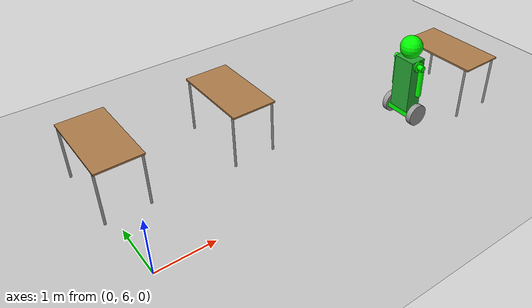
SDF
<sdf version="1.6">
 <world name="default">
  <model name="ground_plane">
   <static>1</static>
   <link name="link">
    <collision name="collision">
     <geometry><plane><normal>0 0 1</normal><size>100 100</size></plane></geometry>
     <surface>
      <contact><collide_bitmask>65535</collide_bitmask></contact>
      <friction><ode><mu>100</mu><mu2>50</mu2></ode></friction>
     </surface>
    </collision>
    <visual name="visual">
     <cast_shadows>0</cast_shadows>
     <geometry><plane><normal>0 0 1</normal><size>100 100</size></plane></geometry>
     <material>
      <script><uri>file://media/materials/scripts/gazebo.material</uri><name>Gazebo/Grey</name></script>
     </material>
    </visual>
   </link>
  </model>
  <model name="table">
   <static>1</static>
   <link name="link">
    <collision name="surface">
     <pose>0 0 1 0 -0 0</pose>
     <geometry><box><size>1.5 0.8 0.03</size></box></geometry>
     <surface><friction><ode><mu>0.6</mu><mu2>0.6</mu2></ode></friction></surface>
    </collision>
    <visual name="visual1">
     <pose>0 0 1 0 -0 0</pose>
     <geometry><box><size>1.5 0.8 0.03</size></box></geometry>
     <material>
      <script><uri>file://media/materials/scripts/gazebo.material</uri><name>Gazebo/Wood</name></script>
     </material>
    </visual>
    <collision name="front_left_leg">
     <pose>0.68 0.38 0.5 0 -0 0</pose>
     <geometry><cylinder><radius>0.02</radius><length>1</length></cylinder></geometry>
    </collision>
    <visual name="front_left_leg">
     <pose>0.68 0.38 0.5 0 -0 0</pose>
     <geometry><cylinder><radius>0.02</radius><length>1</length></cylinder></geometry>
     <material>
      <script><uri>file://media/materials/scripts/gazebo.material</uri><name>Gazebo/Grey</name></script>
     </material>
    </visual>
    <collision name="front_right_leg">
     <pose>0.68 -0.38 0.5 0 -0 0</pose>
     <geometry><cylinder><radius>0.02</radius><length>1</length></cylinder></geometry>
    </collision>
    <visual name="front_right_leg">
     <pose>0.68 -0.38 0.5 0 -0 0</pose>
     <geometry><cylinder><radius>0.02</radius><length>1</length></cylinder></geometry>
     <material>
      <script><uri>file://media/materials/scripts/gazebo.material</uri><name>Gazebo/Grey</name></script>
     </material>
    </visual>
    <collision name="back_right_leg">
     <pose>-0.68 -0.38 0.5 0 -0 0</pose>
     <geometry><cylinder><radius>0.02</radius><length>1</length></cylinder></geometry>
    </collision>
    <visual name="back_right_leg">
     <pose>-0.68 -0.38 0.5 0 -0 0</pose>
     <geometry><cylinder><radius>0.02</radius><length>1</length></cylinder></geometry>
     <material>
      <script><uri>file://media/materials/scripts/gazebo.material</uri><name>Gazebo/Grey</name></script>
     </material>
    </visual>
    <collision name="back_left_leg">
     <pose>-0.68 0.38 0.5 0 -0 0</pose>
     <geometry><cylinder><radius>0.02</radius><length>1</length></cylinder></geometry>
    </collision>
    <visual name="back_left_leg">
     <pose>-0.68 0.38 0.5 0 -0 0</pose>
     <geometry><cylinder><radius>0.02</radius><length>1</length></cylinder></geometry>
     <material>
      <script><uri>file://media/materials/scripts/gazebo.material</uri><name>Gazebo/Grey</name></script>
     </material>
    </visual>
   </link>
   <pose>0.217086 7.96182 0 0 -0 1.58249</pose>
  </model>
  <model name="table_clone">
   <static>1</static>
   <link name="link">
    <collision name="surface">
     <pose>0 0 1 0 -0 0</pose>
     <geometry><box><size>1.5 0.8 0.03</size></box></geometry>
     <surface><friction><ode><mu>0.6</mu><mu2>0.6</mu2></ode></friction></surface>
    </collision>
    <visual name="visual1">
     <pose>0 0 1 0 -0 0</pose>
     <geometry><box><size>1.5 0.8 0.03</size></box></geometry>
     <material>
      <script><uri>file://media/materials/scripts/gazebo.material</uri><name>Gazebo/Wood</name></script>
     </material>
    </visual>
    <collision name="front_left_leg">
     <pose>0.68 0.38 0.5 0 -0 0</pose>
     <geometry><cylinder><radius>0.02</radius><length>1</length></cylinder></geometry>
    </collision>
    <visual name="front_left_leg">
     <pose>0.68 0.38 0.5 0 -0 0</pose>
     <geometry><cylinder><radius>0.02</radius><length>1</length></cylinder></geometry>
     <material>
      <script><uri>file://media/materials/scripts/gazebo.material</uri><name>Gazebo/Grey</name></script>
     </material>
    </visual>
    <collision name="front_right_leg">
     <pose>0.68 -0.38 0.5 0 -0 0</pose>
     <geometry><cylinder><radius>0.02</radius><length>1</length></cylinder></geometry>
    </collision>
    <visual name="front_right_leg">
     <pose>0.68 -0.38 0.5 0 -0 0</pose>
     <geometry><cylinder><radius>0.02</radius><length>1</length></cylinder></geometry>
     <material>
      <script><uri>file://media/materials/scripts/gazebo.material</uri><name>Gazebo/Grey</name></script>
     </material>
    </visual>
    <collision name="back_right_leg">
     <pose>-0.68 -0.38 0.5 0 -0 0</pose>
     <geometry><cylinder><radius>0.02</radius><length>1</length></cylinder></geometry>
    </collision>
    <visual name="back_right_leg">
     <pose>-0.68 -0.38 0.5 0 -0 0</pose>
     <geometry><cylinder><radius>0.02</radius><length>1</length></cylinder></geometry>
     <material>
      <script><uri>file://media/materials/scripts/gazebo.material</uri><name>Gazebo/Grey</name></script>
     </material>
    </visual>
    <collision name="back_left_leg">
     <pose>-0.68 0.38 0.5 0 -0 0</pose>
     <geometry><cylinder><radius>0.02</radius><length>1</length></cylinder></geometry>
    </collision>
    <visual name="back_left_leg">
     <pose>-0.68 0.38 0.5 0 -0 0</pose>
     <geometry><cylinder><radius>0.02</radius><length>1</length></cylinder></geometry>
     <material>
      <script><uri>file://media/materials/scripts/gazebo.material</uri><name>Gazebo/Grey</name></script>
     </material>
    </visual>
   </link>
   <pose>2.49398 7.93841 0 0 -0 1.58249</pose>
  </model>
  <model name="table_clone_clone">
   <static>1</static>
   <link name="link">
    <collision name="surface">
     <pose>0 0 1 0 -0 0</pose>
     <geometry><box><size>1.5 0.8 0.03</size></box></geometry>
     <surface><friction><ode><mu>0.6</mu><mu2>0.6</mu2></ode></friction></surface>
    </collision>
    <visual name="visual1">
     <pose>0 0 1 0 -0 0</pose>
     <geometry><box><size>1.5 0.8 0.03</size></box></geometry>
     <material>
      <script><uri>file://media/materials/scripts/gazebo.material</uri><name>Gazebo/Wood</name></script>
     </material>
    </visual>
    <collision name="front_left_leg">
     <pose>0.68 0.38 0.5 0 -0 0</pose>
     <geometry><cylinder><radius>0.02</radius><length>1</length></cylinder></geometry>
    </collision>
    <visual name="front_left_leg">
     <pose>0.68 0.38 0.5 0 -0 0</pose>
     <geometry><cylinder><radius>0.02</radius><length>1</length></cylinder></geometry>
     <material>
      <script><uri>file://media/materials/scripts/gazebo.material</uri><name>Gazebo/Grey</name></script>
     </material>
    </visual>
    <collision name="front_right_leg">
     <pose>0.68 -0.38 0.5 0 -0 0</pose>
     <geometry><cylinder><radius>0.02</radius><length>1</length></cylinder></geometry>
    </collision>
    <visual name="front_right_leg">
     <pose>0.68 -0.38 0.5 0 -0 0</pose>
     <geometry><cylinder><radius>0.02</radius><length>1</length></cylinder></geometry>
     <material>
      <script><uri>file://media/materials/scripts/gazebo.material</uri><name>Gazebo/Grey</name></script>
     </material>
    </visual>
    <collision name="back_right_leg">
     <pose>-0.68 -0.38 0.5 0 -0 0</pose>
     <geometry><cylinder><radius>0.02</radius><length>1</length></cylinder></geometry>
    </collision>
    <visual name="back_right_leg">
     <pose>-0.68 -0.38 0.5 0 -0 0</pose>
     <geometry><cylinder><radius>0.02</radius><length>1</length></cylinder></geometry>
     <material>
      <script><uri>file://media/materials/scripts/gazebo.material</uri><name>Gazebo/Grey</name></script>
     </material>
    </visual>
    <collision name="back_left_leg">
     <pose>-0.68 0.38 0.5 0 -0 0</pose>
     <geometry><cylinder><radius>0.02</radius><length>1</length></cylinder></geometry>
    </collision>
    <visual name="back_left_leg">
     <pose>-0.68 0.38 0.5 0 -0 0</pose>
     <geometry><cylinder><radius>0.02</radius><length>1</length></cylinder></geometry>
     <material>
      <script><uri>file://media/materials/scripts/gazebo.material</uri><name>Gazebo/Grey</name></script>
     </material>
    </visual>
   </link>
   <pose>6.55979 6.6988 0 0 -0 1.58249</pose>
  </model>
  <model name="humanoid_robot_clone_1">
   <link name="link_0">
    <pose>0 0 -0.1375 0 -0 0</pose>
    <inertial>
     <mass>10</mass>
     <inertia>
      <ixx>0.216667</ixx>
      <ixy>0</ixy>
      <ixz>0</ixz>
      <iyy>0.0833333</iyy>
      <iyz>0</iyz>
      <izz>0.283333</izz>
     </inertia>
    </inertial>
    <visual name="visual">
     <geometry><box><size>0.3 0.5 0.1</size></box></geometry>
     <material>
      <lighting>1</lighting>
      <script><uri>file://media/materials/scripts/gazebo.material</uri><name>Gazebo/Grey</name></script>
      <shader type="pixel"><normal_map>__default__</normal_map></shader>
      <ambient>0 1 0 1</ambient>
      <diffuse>0.7 0.7 0.7 1</diffuse>
      <specular>0.01 0.01 0.01 1</specular>
      <emissive>0 0 0 1</emissive>
     </material>
    </visual>
    <collision name="collision">
     <geometry><box><size>0.3 0.5 0.1</size></box></geometry>
     <surface>
      <friction>
       <ode><mu>1</mu><mu2>1</mu2><fdir1>0 0 0</fdir1><slip1>0</slip1><slip2>0</slip2></ode>
       <torsional>
        <coefficient>1</coefficient>
        <patch_radius>0</patch_radius>
        <surface_radius>0</surface_radius>
        <use_patch_radius>1</use_patch_radius>
        <ode><slip>0</slip></ode>
       </torsional>
      </friction>
      <bounce><restitution_coefficient>0</restitution_coefficient><threshold>1e+06</threshold></bounce>
      <contact>
       <collide_without_contact>0</collide_without_contact>
       <collide_without_contact_bitmask>1</collide_without_contact_bitmask>
       <collide_bitmask>1</collide_bitmask>
       <ode>
        <soft_cfm>0</soft_cfm>
        <soft_erp>0.2</soft_erp>
        <kp>1e+13</kp>
        <kd>1</kd>
        <max_vel>0.01</max_vel>
        <min_depth>0</min_depth>
       </ode>
       <bullet>
        <split_impulse>1</split_impulse>
        <split_impulse_penetration_threshold>-0.01</split_impulse_penetration_threshold>
        <soft_cfm>0</soft_cfm>
        <soft_erp>0.2</soft_erp>
        <kp>1e+13</kp>
        <kd>1</kd>
       </bullet>
      </contact>
     </surface>
    </collision>
   </link>
   <link name="link_0_0">
    <pose>0 0 1.1125 0 -0 0</pose>
    <inertial>
     <mass>0.25</mass>
     <inertia><ixx>0.1</ixx><ixy>0</ixy><ixz>0</ixz><iyy>0.1</iyy><iyz>0</iyz><izz>0.1</izz></inertia>
    </inertial>
    <visual name="visual">
     <geometry><sphere><radius>0.2</radius></sphere></geometry>
     <material>
      <lighting>1</lighting>
      <script><uri>file://media/materials/scripts/gazebo.material</uri><name>Gazebo/Grey</name></script>
      <shader type="pixel"><normal_map>__default__</normal_map></shader>
      <ambient>0 1 0 1</ambient>
      <diffuse>0.7 0.7 0.7 1</diffuse>
      <specular>0.01 0.01 0.01 1</specular>
      <emissive>0 0 0 1</emissive>
     </material>
    </visual>
    <collision name="collision">
     <geometry><sphere><radius>0.2</radius></sphere></geometry>
     <surface>
      <friction>
       <ode><mu>1</mu><mu2>1</mu2><fdir1>0 0 0</fdir1><slip1>0</slip1><slip2>0</slip2></ode>
       <torsional>
        <coefficient>1</coefficient>
        <patch_radius>0</patch_radius>
        <surface_radius>0</surface_radius>
        <use_patch_radius>1</use_patch_radius>
        <ode><slip>0</slip></ode>
       </torsional>
      </friction>
      <bounce><restitution_coefficient>0</restitution_coefficient><threshold>1e+06</threshold></bounce>
      <contact>
       <collide_without_contact>0</collide_without_contact>
       <collide_without_contact_bitmask>1</collide_without_contact_bitmask>
       <collide_bitmask>1</collide_bitmask>
       <ode>
        <soft_cfm>0</soft_cfm>
        <soft_erp>0.2</soft_erp>
        <kp>1e+13</kp>
        <kd>1</kd>
        <max_vel>0.01</max_vel>
        <min_depth>0</min_depth>
       </ode>
       <bullet>
        <split_impulse>1</split_impulse>
        <split_impulse_penetration_threshold>-0.01</split_impulse_penetration_threshold>
        <soft_cfm>0</soft_cfm>
        <soft_erp>0.2</soft_erp>
        <kp>1e+13</kp>
        <kd>1</kd>
       </bullet>
      </contact>
     </surface>
    </collision>
   </link>
   <link name="link_1">
    <pose>0 -0.300019 -0.137182 1.5707 -0 0</pose>
    <inertial>
     <mass>1</mass>
     <inertia><ixx>0.145833</ixx><ixy>0</ixy><ixz>0</ixz><iyy>0.145833</iyy><iyz>0</iyz><izz>0.125</izz></inertia>
    </inertial>
    <visual name="visual">
     <geometry><cylinder><radius>0.2</radius><length>0.1</length></cylinder></geometry>
     <material>
      <lighting>1</lighting>
      <script><uri>file://media/materials/scripts/gazebo.material</uri><name>Gazebo/Grey</name></script>
      <shader type="pixel"><normal_map>__default__</normal_map></shader>
      <ambient>1 1 1 1</ambient>
      <diffuse>0.7 0.7 0.7 1</diffuse>
      <specular>0.01 0.01 0.01 1</specular>
      <emissive>0 0 0 1</emissive>
     </material>
    </visual>
    <collision name="collision">
     <geometry><cylinder><radius>0.2</radius><length>0.1</length></cylinder></geometry>
     <surface>
      <friction>
       <ode><mu>1</mu><mu2>1</mu2><fdir1>0 0 0</fdir1><slip1>0</slip1><slip2>0</slip2></ode>
       <torsional>
        <coefficient>1</coefficient>
        <patch_radius>0</patch_radius>
        <surface_radius>0</surface_radius>
        <use_patch_radius>1</use_patch_radius>
        <ode><slip>0</slip></ode>
       </torsional>
      </friction>
      <bounce><restitution_coefficient>0</restitution_coefficient><threshold>1e+06</threshold></bounce>
      <contact>
       <collide_without_contact>0</collide_without_contact>
       <collide_without_contact_bitmask>1</collide_without_contact_bitmask>
       <collide_bitmask>1</collide_bitmask>
       <ode>
        <soft_cfm>0</soft_cfm>
        <soft_erp>0.2</soft_erp>
        <kp>1e+13</kp>
        <kd>1</kd>
        <max_vel>0.01</max_vel>
        <min_depth>0</min_depth>
       </ode>
       <bullet>
        <split_impulse>1</split_impulse>
        <split_impulse_penetration_threshold>-0.01</split_impulse_penetration_threshold>
        <soft_cfm>0</soft_cfm>
        <soft_erp>0.2</soft_erp>
        <kp>1e+13</kp>
        <kd>1</kd>
       </bullet>
      </contact>
     </surface>
    </collision>
   </link>
   <link name="link_1_0">
    <pose>0 -0.275033 0.812507 1.5707 -0 0</pose>
    <inertial>
     <mass>0.1</mass>
     <inertia><ixx>0.145833</ixx><ixy>0</ixy><ixz>0</ixz><iyy>0.145833</iyy><iyz>0</iyz><izz>0.125</izz></inertia>
    </inertial>
    <visual name="visual">
     <geometry><cylinder><radius>0.05</radius><length>0.1</length></cylinder></geometry>
     <material>
      <lighting>1</lighting>
      <script><uri>file://media/materials/scripts/gazebo.material</uri><name>Gazebo/Grey</name></script>
      <shader type="pixel"><normal_map>__default__</normal_map></shader>
      <ambient>0 1 0 1</ambient>
      <diffuse>0.7 0.7 0.7 1</diffuse>
      <specular>0.01 0.01 0.01 1</specular>
      <emissive>0 0 0 1</emissive>
     </material>
    </visual>
    <collision name="collision">
     <geometry><cylinder><radius>0.05</radius><length>0.1</length></cylinder></geometry>
     <surface>
      <friction>
       <ode><mu>1</mu><mu2>1</mu2><fdir1>0 0 0</fdir1><slip1>0</slip1><slip2>0</slip2></ode>
       <torsional>
        <coefficient>1</coefficient>
        <patch_radius>0</patch_radius>
        <surface_radius>0</surface_radius>
        <use_patch_radius>1</use_patch_radius>
        <ode><slip>0</slip></ode>
       </torsional>
      </friction>
      <bounce><restitution_coefficient>0</restitution_coefficient><threshold>1e+06</threshold></bounce>
      <contact>
       <collide_without_contact>0</collide_without_contact>
       <collide_without_contact_bitmask>1</collide_without_contact_bitmask>
       <collide_bitmask>1</collide_bitmask>
       <ode>
        <soft_cfm>0</soft_cfm>
        <soft_erp>0.2</soft_erp>
        <kp>1e+13</kp>
        <kd>1</kd>
        <max_vel>0.01</max_vel>
        <min_depth>0</min_depth>
       </ode>
       <bullet>
        <split_impulse>1</split_impulse>
        <split_impulse_penetration_threshold>-0.01</split_impulse_penetration_threshold>
        <soft_cfm>0</soft_cfm>
        <soft_erp>0.2</soft_erp>
        <kp>1e+13</kp>
        <kd>1</kd>
       </bullet>
      </contact>
     </surface>
    </collision>
   </link>
   <link name="link_1_0_clone">
    <pose>0 0.275024 0.812479 1.5707 -0 0</pose>
    <inertial>
     <mass>0.1</mass>
     <inertia><ixx>0.145833</ixx><ixy>0</ixy><ixz>0</ixz><iyy>0.145833</iyy><iyz>0</iyz><izz>0.125</izz></inertia>
    </inertial>
    <visual name="visual_0">
     <geometry><cylinder><radius>0.05</radius><length>0.1</length></cylinder></geometry>
     <material>
      <lighting>1</lighting>
      <script><uri>file://media/materials/scripts/gazebo.material</uri><name>Gazebo/Grey</name></script>
      <shader type="pixel"><normal_map>__default__</normal_map></shader>
      <ambient>0 1 0 1</ambient>
      <diffuse>0.7 0.7 0.7 1</diffuse>
      <specular>0.01 0.01 0.01 1</specular>
      <emissive>0 0 0 1</emissive>
     </material>
    </visual>
    <collision name="collision">
     <geometry><cylinder><radius>0.05</radius><length>0.1</length></cylinder></geometry>
     <surface>
      <friction>
       <ode><mu>1</mu><mu2>1</mu2><fdir1>0 0 0</fdir1><slip1>0</slip1><slip2>0</slip2></ode>
       <torsional>
        <coefficient>1</coefficient>
        <patch_radius>0</patch_radius>
        <surface_radius>0</surface_radius>
        <use_patch_radius>1</use_patch_radius>
        <ode><slip>0</slip></ode>
       </torsional>
      </friction>
      <bounce><restitution_coefficient>0</restitution_coefficient><threshold>1e+06</threshold></bounce>
      <contact>
       <collide_without_contact>0</collide_without_contact>
       <collide_without_contact_bitmask>1</collide_without_contact_bitmask>
       <collide_bitmask>1</collide_bitmask>
       <ode>
        <soft_cfm>0</soft_cfm>
        <soft_erp>0.2</soft_erp>
        <kp>1e+13</kp>
        <kd>1</kd>
        <max_vel>0.01</max_vel>
        <min_depth>0</min_depth>
       </ode>
       <bullet>
        <split_impulse>1</split_impulse>
        <split_impulse_penetration_threshold>-0.01</split_impulse_penetration_threshold>
        <soft_cfm>0</soft_cfm>
        <soft_erp>0.2</soft_erp>
        <kp>1e+13</kp>
        <kd>1</kd>
       </bullet>
      </contact>
     </surface>
    </collision>
   </link>
   <link name="link_1_clone">
    <pose>0 0.300019 -0.137182 1.5707 -0 0</pose>
    <inertial>
     <mass>1</mass>
     <inertia><ixx>0.145833</ixx><ixy>0</ixy><ixz>0</ixz><iyy>0.145833</iyy><iyz>0</iyz><izz>0.125</izz></inertia>
    </inertial>
    <visual name="visual">
     <geometry><cylinder><radius>0.2</radius><length>0.1</length></cylinder></geometry>
     <material>
      <lighting>1</lighting>
      <script><uri>file://media/materials/scripts/gazebo.material</uri><name>Gazebo/Grey</name></script>
      <shader type="pixel"><normal_map>__default__</normal_map></shader>
      <ambient>1 1 1 1</ambient>
      <diffuse>0.7 0.7 0.7 1</diffuse>
      <specular>0.01 0.01 0.01 1</specular>
      <emissive>0 0 0 1</emissive>
     </material>
    </visual>
    <collision name="collision">
     <geometry><cylinder><radius>0.2</radius><length>0.1</length></cylinder></geometry>
     <surface>
      <friction>
       <ode><mu>1</mu><mu2>1</mu2><fdir1>0 0 0</fdir1><slip1>0</slip1><slip2>0</slip2></ode>
       <torsional>
        <coefficient>1</coefficient>
        <patch_radius>0</patch_radius>
        <surface_radius>0</surface_radius>
        <use_patch_radius>1</use_patch_radius>
        <ode><slip>0</slip></ode>
       </torsional>
      </friction>
      <bounce><restitution_coefficient>0</restitution_coefficient><threshold>1e+06</threshold></bounce>
      <contact>
       <collide_without_contact>0</collide_without_contact>
       <collide_without_contact_bitmask>1</collide_without_contact_bitmask>
       <collide_bitmask>1</collide_bitmask>
       <ode>
        <soft_cfm>0</soft_cfm>
        <soft_erp>0.2</soft_erp>
        <kp>1e+13</kp>
        <kd>1</kd>
        <max_vel>0.01</max_vel>
        <min_depth>0</min_depth>
       </ode>
       <bullet>
        <split_impulse>1</split_impulse>
        <split_impulse_penetration_threshold>-0.01</split_impulse_penetration_threshold>
        <soft_cfm>0</soft_cfm>
        <soft_erp>0.2</soft_erp>
        <kp>1e+13</kp>
        <kd>1</kd>
       </bullet>
      </contact>
     </surface>
    </collision>
   </link>
   <link name="link_1_clone_0">
    <pose>0 -0.21251 0.812499 1.5707 -0 0</pose>
    <inertial>
     <mass>1</mass>
     <inertia><ixx>0.145833</ixx><ixy>0</ixy><ixz>0</ixz><iyy>0.145833</iyy><iyz>0</iyz><izz>0.125</izz></inertia>
    </inertial>
    <visual name="visual">
     <geometry><cylinder><radius>0.1</radius><length>0.025</length></cylinder></geometry>
     <material>
      <lighting>1</lighting>
      <script><uri>file://media/materials/scripts/gazebo.material</uri><name>Gazebo/Grey</name></script>
      <shader type="pixel"><normal_map>__default__</normal_map></shader>
      <ambient>0 1 0 1</ambient>
      <diffuse>0.7 0.7 0.7 1</diffuse>
      <specular>0.01 0.01 0.01 1</specular>
      <emissive>0 0 0 1</emissive>
     </material>
    </visual>
    <collision name="collision">
     <geometry><cylinder><radius>0.1</radius><length>0.025</length></cylinder></geometry>
     <surface>
      <friction>
       <ode><mu>1</mu><mu2>1</mu2><fdir1>0 0 0</fdir1><slip1>0</slip1><slip2>0</slip2></ode>
       <torsional>
        <coefficient>1</coefficient>
        <patch_radius>0</patch_radius>
        <surface_radius>0</surface_radius>
        <use_patch_radius>1</use_patch_radius>
        <ode><slip>0</slip></ode>
       </torsional>
      </friction>
      <bounce><restitution_coefficient>0</restitution_coefficient><threshold>1e+06</threshold></bounce>
      <contact>
       <collide_without_contact>0</collide_without_contact>
       <collide_without_contact_bitmask>1</collide_without_contact_bitmask>
       <collide_bitmask>1</collide_bitmask>
       <ode>
        <soft_cfm>0</soft_cfm>
        <soft_erp>0.2</soft_erp>
        <kp>1e+13</kp>
        <kd>1</kd>
        <max_vel>0.01</max_vel>
        <min_depth>0</min_depth>
       </ode>
       <bullet>
        <split_impulse>1</split_impulse>
        <split_impulse_penetration_threshold>-0.01</split_impulse_penetration_threshold>
        <soft_cfm>0</soft_cfm>
        <soft_erp>0.2</soft_erp>
        <kp>1e+13</kp>
        <kd>1</kd>
       </bullet>
      </contact>
     </surface>
    </collision>
   </link>
   <link name="link_1_clone_0_clone">
    <pose>0 0.21251 0.812499 1.5707 -0 0</pose>
    <inertial>
     <mass>1</mass>
     <inertia><ixx>0.145833</ixx><ixy>0</ixy><ixz>0</ixz><iyy>0.145833</iyy><iyz>0</iyz><izz>0.125</izz></inertia>
    </inertial>
    <visual name="visual">
     <geometry><cylinder><radius>0.1</radius><length>0.025</length></cylinder></geometry>
     <material>
      <lighting>1</lighting>
      <script><uri>file://media/materials/scripts/gazebo.material</uri><name>Gazebo/Grey</name></script>
      <shader type="pixel"><normal_map>__default__</normal_map></shader>
      <ambient>0 1 0 1</ambient>
      <diffuse>0.7 0.7 0.7 1</diffuse>
      <specular>0.01 0.01 0.01 1</specular>
      <emissive>0 0 0 1</emissive>
     </material>
    </visual>
    <collision name="collision">
     <geometry><cylinder><radius>0.1</radius><length>0.025</length></cylinder></geometry>
     <surface>
      <friction>
       <ode><mu>1</mu><mu2>1</mu2><fdir1>0 0 0</fdir1><slip1>0</slip1><slip2>0</slip2></ode>
       <torsional>
        <coefficient>1</coefficient>
        <patch_radius>0</patch_radius>
        <surface_radius>0</surface_radius>
        <use_patch_radius>1</use_patch_radius>
        <ode><slip>0</slip></ode>
       </torsional>
      </friction>
      <bounce><restitution_coefficient>0</restitution_coefficient><threshold>1e+06</threshold></bounce>
      <contact>
       <collide_without_contact>0</collide_without_contact>
       <collide_without_contact_bitmask>1</collide_without_contact_bitmask>
       <collide_bitmask>1</collide_bitmask>
       <ode>
        <soft_cfm>0</soft_cfm>
        <soft_erp>0.2</soft_erp>
        <kp>1e+13</kp>
        <kd>1</kd>
        <max_vel>0.01</max_vel>
        <min_depth>0</min_depth>
       </ode>
       <bullet>
        <split_impulse>1</split_impulse>
        <split_impulse_penetration_threshold>-0.01</split_impulse_penetration_threshold>
        <soft_cfm>0</soft_cfm>
        <soft_erp>0.2</soft_erp>
        <kp>1e+13</kp>
        <kd>1</kd>
       </bullet>
      </contact>
     </surface>
    </collision>
   </link>
   <link name="link_3">
    <pose>0 0 0.4125 0 -0 0</pose>
    <inertial>
     <mass>1</mass>
     <inertia>
      <ixx>0.166667</ixx>
      <ixy>0</ixy>
      <ixz>0</ixz>
      <iyy>0.166667</iyy>
      <iyz>0</iyz>
      <izz>0.166667</izz>
     </inertia>
    </inertial>
    <visual name="visual">
     <geometry><box><size>0.3 0.4 1</size></box></geometry>
     <material>
      <lighting>1</lighting>
      <script><uri>file://media/materials/scripts/gazebo.material</uri><name>Gazebo/Green</name></script>
      <shader type="pixel"><normal_map>__default__</normal_map></shader>
      <ambient>0 1 0 1</ambient>
      <diffuse>0.7 0.7 0.7 1</diffuse>
      <specular>0.01 0.01 0.01 1</specular>
      <emissive>0 0 0 1</emissive>
     </material>
    </visual>
    <collision name="collision">
     <geometry><box><size>0.3 0.4 1</size></box></geometry>
     <surface>
      <friction>
       <ode><mu>1</mu><mu2>1</mu2><fdir1>0 0 0</fdir1><slip1>0</slip1><slip2>0</slip2></ode>
       <torsional>
        <coefficient>1</coefficient>
        <patch_radius>0</patch_radius>
        <surface_radius>0</surface_radius>
        <use_patch_radius>1</use_patch_radius>
        <ode><slip>0</slip></ode>
       </torsional>
      </friction>
      <bounce><restitution_coefficient>0</restitution_coefficient><threshold>1e+06</threshold></bounce>
      <contact>
       <collide_without_contact>0</collide_without_contact>
       <collide_without_contact_bitmask>1</collide_without_contact_bitmask>
       <collide_bitmask>1</collide_bitmask>
       <ode>
        <soft_cfm>0</soft_cfm>
        <soft_erp>0.2</soft_erp>
        <kp>1e+13</kp>
        <kd>1</kd>
        <max_vel>0.01</max_vel>
        <min_depth>0</min_depth>
       </ode>
       <bullet>
        <split_impulse>1</split_impulse>
        <split_impulse_penetration_threshold>-0.01</split_impulse_penetration_threshold>
        <soft_cfm>0</soft_cfm>
        <soft_erp>0.2</soft_erp>
        <kp>1e+13</kp>
        <kd>1</kd>
       </bullet>
      </contact>
     </surface>
    </collision>
   </link>
   <link name="link_3_0">
    <pose>0 -0.285062 0.512562 0 -0 0</pose>
    <inertial>
     <mass>0.5</mass>
     <inertia><ixx>0.145833</ixx><ixy>0</ixy><ixz>0</ixz><iyy>0.145833</iyy><iyz>0</iyz><izz>0.125</izz></inertia>
    </inertial>
    <visual name="visual">
     <geometry><cylinder><radius>0.05</radius><length>0.5</length></cylinder></geometry>
     <material>
      <lighting>1</lighting>
      <script><uri>file://media/materials/scripts/gazebo.material</uri><name>Gazebo/Grey</name></script>
      <shader type="pixel"><normal_map>__default__</normal_map></shader>
      <ambient>0 1 0 1</ambient>
      <diffuse>0.7 0.7 0.7 1</diffuse>
      <specular>0.01 0.01 0.01 1</specular>
      <emissive>0 0 0 1</emissive>
     </material>
    </visual>
    <collision name="collision">
     <geometry><cylinder><radius>0.05</radius><length>0.5</length></cylinder></geometry>
     <surface>
      <friction>
       <ode><mu>1</mu><mu2>1</mu2><fdir1>0 0 0</fdir1><slip1>0</slip1><slip2>0</slip2></ode>
       <torsional>
        <coefficient>1</coefficient>
        <patch_radius>0</patch_radius>
        <surface_radius>0</surface_radius>
        <use_patch_radius>1</use_patch_radius>
        <ode><slip>0</slip></ode>
       </torsional>
      </friction>
      <bounce><restitution_coefficient>0</restitution_coefficient><threshold>1e+06</threshold></bounce>
      <contact>
       <collide_without_contact>0</collide_without_contact>
       <collide_without_contact_bitmask>1</collide_without_contact_bitmask>
       <collide_bitmask>1</collide_bitmask>
       <ode>
        <soft_cfm>0</soft_cfm>
        <soft_erp>0.2</soft_erp>
        <kp>1e+13</kp>
        <kd>1</kd>
        <max_vel>0.01</max_vel>
        <min_depth>0</min_depth>
       </ode>
       <bullet>
        <split_impulse>1</split_impulse>
        <split_impulse_penetration_threshold>-0.01</split_impulse_penetration_threshold>
        <soft_cfm>0</soft_cfm>
        <soft_erp>0.2</soft_erp>
        <kp>1e+13</kp>
        <kd>1</kd>
       </bullet>
      </contact>
     </surface>
    </collision>
   </link>
   <link name="link_3_0_clone">
    <pose>0 0.284995 0.512478 0 -0 0</pose>
    <inertial>
     <mass>0.5</mass>
     <inertia><ixx>0.145833</ixx><ixy>0</ixy><ixz>0</ixz><iyy>0.145833</iyy><iyz>0</iyz><izz>0.125</izz></inertia>
    </inertial>
    <visual name="visual_0">
     <geometry><cylinder><radius>0.05</radius><length>0.5</length></cylinder></geometry>
     <material>
      <lighting>1</lighting>
      <script><uri>file://media/materials/scripts/gazebo.material</uri><name>Gazebo/Grey</name></script>
      <shader type="pixel"><normal_map>__default__</normal_map></shader>
      <ambient>0 1 0 1</ambient>
      <diffuse>0.7 0.7 0.7 1</diffuse>
      <specular>0.01 0.01 0.01 1</specular>
      <emissive>0 0 0 1</emissive>
     </material>
    </visual>
    <collision name="collision">
     <geometry><cylinder><radius>0.05</radius><length>0.5</length></cylinder></geometry>
     <surface>
      <friction>
       <ode><mu>1</mu><mu2>1</mu2><fdir1>0 0 0</fdir1><slip1>0</slip1><slip2>0</slip2></ode>
       <torsional>
        <coefficient>1</coefficient>
        <patch_radius>0</patch_radius>
        <surface_radius>0</surface_radius>
        <use_patch_radius>1</use_patch_radius>
        <ode><slip>0</slip></ode>
       </torsional>
      </friction>
      <bounce><restitution_coefficient>0</restitution_coefficient><threshold>1e+06</threshold></bounce>
      <contact>
       <collide_without_contact>0</collide_without_contact>
       <collide_without_contact_bitmask>1</collide_without_contact_bitmask>
       <collide_bitmask>1</collide_bitmask>
       <ode>
        <soft_cfm>0</soft_cfm>
        <soft_erp>0.2</soft_erp>
        <kp>1e+13</kp>
        <kd>1</kd>
        <max_vel>0.01</max_vel>
        <min_depth>0</min_depth>
       </ode>
       <bullet>
        <split_impulse>1</split_impulse>
        <split_impulse_penetration_threshold>-0.01</split_impulse_penetration_threshold>
        <soft_cfm>0</soft_cfm>
        <soft_erp>0.2</soft_erp>
        <kp>1e+13</kp>
        <kd>1</kd>
       </bullet>
      </contact>
     </surface>
    </collision>
   </link>
   <joint name="link_0_JOINT_2" type="fixed">
    <parent>link_0</parent>
    <child>link_3</child>
    <physics>
     <ode><limit><cfm>0</cfm><erp>0.2</erp></limit><suspension><cfm>0</cfm><erp>0.2</erp></suspension></ode>
    </physics>
   </joint>
   <joint name="link_0_JOINT_3" type="revolute">
    <parent>link_0</parent>
    <child>link_1</child>
    <axis>
     <xyz>0 0 -1</xyz>
     <use_parent_model_frame>0</use_parent_model_frame>
     <limit>
      <lower>-1.79769e+308</lower>
      <upper>1.79769e+308</upper>
      <effort>-1</effort>
      <velocity>-1</velocity>
     </limit>
     <dynamics>
      <spring_reference>0</spring_reference>
      <spring_stiffness>0</spring_stiffness>
      <damping>0</damping>
     </dynamics>
    </axis>
    <physics>
     <ode><limit><cfm>0</cfm><erp>0.2</erp></limit><suspension><cfm>0</cfm><erp>0.2</erp></suspension></ode>
    </physics>
   </joint>
   <joint name="link_0_JOINT_5" type="revolute">
    <parent>link_0</parent>
    <child>link_1_clone</child>
    <axis>
     <xyz>0 0 1</xyz>
     <use_parent_model_frame>0</use_parent_model_frame>
     <limit>
      <lower>-1.79769e+308</lower>
      <upper>1.79769e+308</upper>
      <effort>-1</effort>
      <velocity>-1</velocity>
     </limit>
     <dynamics>
      <spring_reference>0</spring_reference>
      <spring_stiffness>0</spring_stiffness>
      <damping>0</damping>
     </dynamics>
    </axis>
    <physics>
     <ode><limit><cfm>0</cfm><erp>0.2</erp></limit><suspension><cfm>0</cfm><erp>0.2</erp></suspension></ode>
    </physics>
   </joint>
   <joint name="link_1_0_JOINT_16" type="fixed">
    <parent>link_1_0</parent>
    <child>link_3_0</child>
    <physics>
     <ode><limit><cfm>0</cfm><erp>0.2</erp></limit><suspension><cfm>0</cfm><erp>0.2</erp></suspension></ode>
    </physics>
   </joint>
   <joint name="link_1_0_clone_JOINT_17" type="fixed">
    <parent>link_1_0_clone</parent>
    <child>link_3_0_clone</child>
    <physics>
     <ode><limit><cfm>0</cfm><erp>0.2</erp></limit><suspension><cfm>0</cfm><erp>0.2</erp></suspension></ode>
    </physics>
   </joint>
   <joint name="link_1_clone_0_JOINT_10" type="revolute">
    <parent>link_1_clone_0</parent>
    <child>link_1_0</child>
    <axis>
     <xyz>0 0 1</xyz>
     <use_parent_model_frame>0</use_parent_model_frame>
     <limit>
      <lower>-1.79769e+308</lower>
      <upper>1.79769e+308</upper>
      <effort>50</effort>
      <velocity>-1</velocity>
     </limit>
     <dynamics>
      <spring_reference>0</spring_reference>
      <spring_stiffness>0</spring_stiffness>
      <damping>0</damping>
      <friction>0</friction>
     </dynamics>
    </axis>
    <physics>
     <ode><limit><cfm>0</cfm><erp>0.2</erp></limit><suspension><cfm>0</cfm><erp>0.2</erp></suspension></ode>
    </physics>
   </joint>
   <joint name="link_1_clone_0_clone_JOINT_0" type="revolute">
    <parent>link_1_clone_0_clone</parent>
    <child>link_1_0_clone</child>
    <axis>
     <xyz>0 0 1</xyz>
     <use_parent_model_frame>0</use_parent_model_frame>
     <limit>
      <lower>-1.79769e+308</lower>
      <upper>1.79769e+308</upper>
      <effort>50</effort>
      <velocity>-1</velocity>
     </limit>
     <dynamics>
      <spring_reference>0</spring_reference>
      <spring_stiffness>0</spring_stiffness>
      <damping>0</damping>
      <friction>0</friction>
     </dynamics>
    </axis>
    <physics>
     <ode><limit><cfm>0</cfm><erp>0.2</erp></limit><suspension><cfm>0</cfm><erp>0.2</erp></suspension></ode>
    </physics>
   </joint>
   <joint name="link_3_JOINT_2" type="fixed">
    <parent>link_3</parent>
    <child>link_1_clone_0</child>
    <physics>
     <ode><limit><cfm>0</cfm><erp>0.2</erp></limit><suspension><cfm>0</cfm><erp>0.2</erp></suspension></ode>
    </physics>
   </joint>
   <joint name="link_3_JOINT_3" type="fixed">
    <parent>link_3</parent>
    <child>link_1_clone_0_clone</child>
    <physics>
     <ode><limit><cfm>0</cfm><erp>0.2</erp></limit><suspension><cfm>0</cfm><erp>0.2</erp></suspension></ode>
    </physics>
   </joint>
   <joint name="link_3_JOINT_5" type="fixed">
    <parent>link_3</parent>
    <child>link_0_0</child>
    <physics>
     <ode><limit><cfm>0</cfm><erp>0.2</erp></limit><suspension><cfm>0</cfm><erp>0.2</erp></suspension></ode>
    </physics>
   </joint>
   <static>0</static>
   <pose>5.39168 6.62114 0.337184 9e-06 -0 0</pose>
  </model>
 </world>
</sdf>
